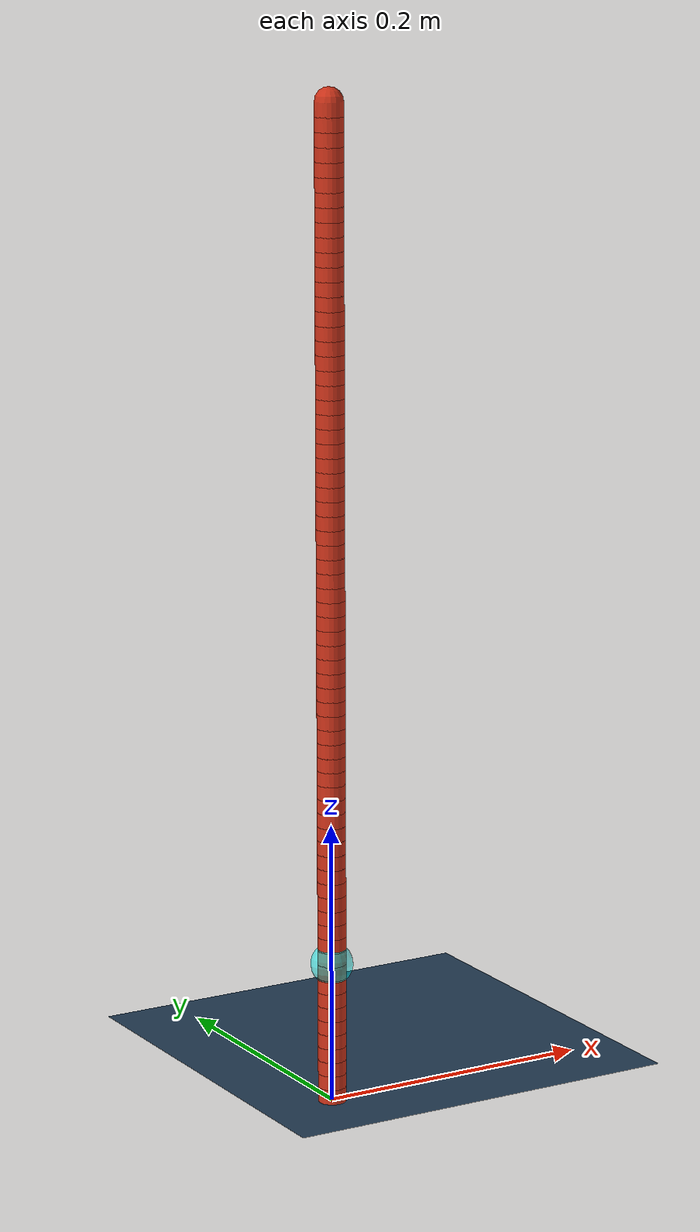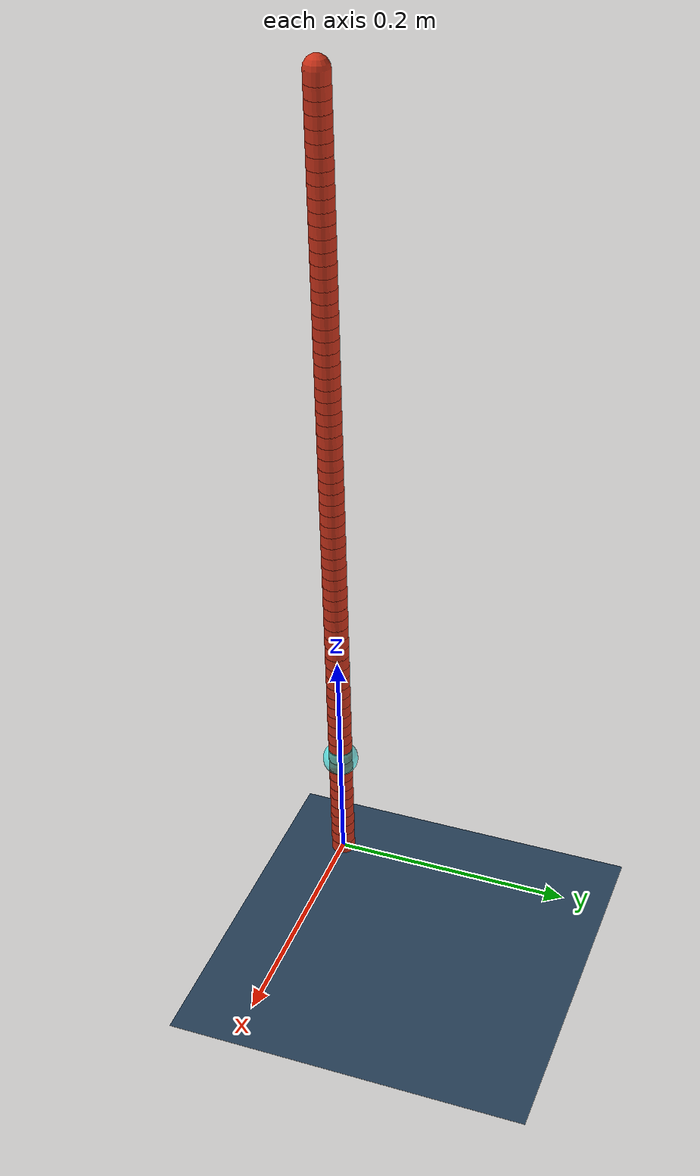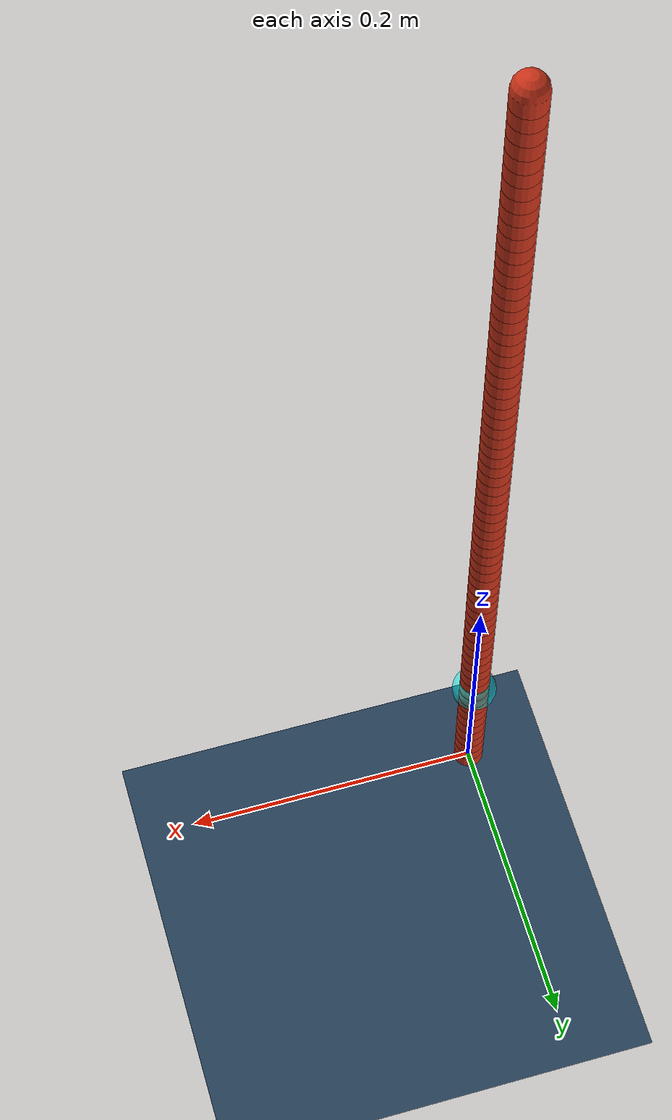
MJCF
<mujoco model="RopeNoComposite">
  <size nconmax="2000" njmax="20000" nstack="500000"/>

  <visual>
    <headlight diffuse="0.6 0.6 0.6" ambient="0.1 0.1 0.1" specular="0 0 0"/>
    <rgba haze="0.15 0.25 0.35 1"/>
    <global azimuth="120" elevation="-20"/>
  </visual>

  <asset>
    <texture type="skybox" builtin="gradient" rgb1="0.3 0.5 0.7" rgb2="0 0 0" width="512" height="3072"/>
    <texture type="2d" name="groundplane" builtin="checker" mark="edge" rgb1="0.2 0.3 0.4" rgb2="0.1 0.2 0.3" markrgb="0.8 0.8 0.8" width="300" height="300"/>
    <material name="groundplane" texture="groundplane" texuniform="true" texrepeat="5 5" reflectance="0.2"/>
  </asset>

  <worldbody>
    <light pos="0 0 1.5" dir="0 0 -1" directional="true"/>

    <geom name="ground" type="plane" size="0 0 1" material="groundplane"/>

    <body name="mocap_hand" mocap="true" pos="0 0 0.1">
        <geom type="sphere" size="0.015" rgba="0 1 1 0.5" group="1" contype="0" conaffinity="0"/>
        <site name="hand_site" pos="0 0 0" size="0.005" rgba="1 0 0 0" />
    </body>

    <body name="link_0" pos="0 0 0">
        <freejoint/>
        <site name="site_link_0" pos="0 0 0" size="0.005" rgba="0 0 1 0"/>
        <geom type="capsule" fromto="0 0 0  0 0 0.01" size="0.01" friction="2.0 0.1 0.01" rgba="0.8 0.2 0.1 1"/>
        <body name="link_1" pos="0 0 0.01">
          <joint name="j_1" type="ball" damping="0.005"/>
          <site name="site_link_1" pos="0 0 0" size="0.005" rgba="0 0 1 0"/>
          <geom type="capsule" fromto="0 0 0  0 0 0.01" size="0.01" friction="2.0 0.1 0.01" rgba="0.8 0.2 0.1 1"/>
          <body name="link_2" pos="0 0 0.01">
            <joint name="j_2" type="ball" damping="0.005"/>
            <site name="site_link_2" pos="0 0 0" size="0.005" rgba="0 0 1 0"/>
            <geom type="capsule" fromto="0 0 0  0 0 0.01" size="0.01" friction="2.0 0.1 0.01" rgba="0.8 0.2 0.1 1"/>
            <body name="link_3" pos="0 0 0.01">
              <joint name="j_3" type="ball" damping="0.005"/>
              <site name="site_link_3" pos="0 0 0" size="0.005" rgba="0 0 1 0"/>
              <geom type="capsule" fromto="0 0 0  0 0 0.01" size="0.01" friction="2.0 0.1 0.01" rgba="0.8 0.2 0.1 1"/>
              <body name="link_4" pos="0 0 0.01">
                <joint name="j_4" type="ball" damping="0.005"/>
                <site name="site_link_4" pos="0 0 0" size="0.005" rgba="0 0 1 0"/>
                <geom type="capsule" fromto="0 0 0  0 0 0.01" size="0.01" friction="2.0 0.1 0.01" rgba="0.8 0.2 0.1 1"/>
                <body name="link_5" pos="0 0 0.01">
                  <joint name="j_5" type="ball" damping="0.005"/>
                  <site name="site_link_5" pos="0 0 0" size="0.005" rgba="0 0 1 0"/>
                  <geom type="capsule" fromto="0 0 0  0 0 0.01" size="0.01" friction="2.0 0.1 0.01" rgba="0.8 0.2 0.1 1"/>
                  <body name="link_6" pos="0 0 0.01">
                    <joint name="j_6" type="ball" damping="0.005"/>
                    <site name="site_link_6" pos="0 0 0" size="0.005" rgba="0 0 1 0"/>
                    <geom type="capsule" fromto="0 0 0  0 0 0.01" size="0.01" friction="2.0 0.1 0.01" rgba="0.8 0.2 0.1 1"/>
                    <body name="link_7" pos="0 0 0.01">
                      <joint name="j_7" type="ball" damping="0.005"/>
                      <site name="site_link_7" pos="0 0 0" size="0.005" rgba="0 0 1 0"/>
                      <geom type="capsule" fromto="0 0 0  0 0 0.01" size="0.01" friction="2.0 0.1 0.01" rgba="0.8 0.2 0.1 1"/>
                      <body name="link_8" pos="0 0 0.01">
                        <joint name="j_8" type="ball" damping="0.005"/>
                        <site name="site_link_8" pos="0 0 0" size="0.005" rgba="0 0 1 0"/>
                        <geom type="capsule" fromto="0 0 0  0 0 0.01" size="0.01" friction="2.0 0.1 0.01" rgba="0.8 0.2 0.1 1"/>
                        <body name="link_9" pos="0 0 0.01">
                          <joint name="j_9" type="ball" damping="0.005"/>
                          <site name="site_link_9" pos="0 0 0" size="0.005" rgba="0 0 1 0"/>
                          <geom type="capsule" fromto="0 0 0  0 0 0.01" size="0.01" friction="2.0 0.1 0.01" rgba="0.8 0.2 0.1 1"/>
                          <body name="link_10" pos="0 0 0.01">
                            <joint name="j_10" type="ball" damping="0.005"/>
                            <site name="site_link_10" pos="0 0 0" size="0.005" rgba="0 0 1 0"/>
                            <geom type="capsule" fromto="0 0 0  0 0 0.01" size="0.01" friction="2.0 0.1 0.01" rgba="0.8 0.2 0.1 1"/>
                            <body name="link_11" pos="0 0 0.01">
                              <joint name="j_11" type="ball" damping="0.005"/>
                              <site name="site_link_11" pos="0 0 0" size="0.005" rgba="0 0 1 0"/>
                              <geom type="capsule" fromto="0 0 0  0 0 0.01" size="0.01" friction="2.0 0.1 0.01" rgba="0.8 0.2 0.1 1"/>
                              <body name="link_12" pos="0 0 0.01">
                                <joint name="j_12" type="ball" damping="0.005"/>
                                <site name="site_link_12" pos="0 0 0" size="0.005" rgba="0 0 1 0"/>
                                <geom type="capsule" fromto="0 0 0  0 0 0.01" size="0.01" friction="2.0 0.1 0.01" rgba="0.8 0.2 0.1 1"/>
                                <body name="link_13" pos="0 0 0.01">
                                  <joint name="j_13" type="ball" damping="0.005"/>
                                  <site name="site_link_13" pos="0 0 0" size="0.005" rgba="0 0 1 0"/>
                                  <geom type="capsule" fromto="0 0 0  0 0 0.01" size="0.01" friction="2.0 0.1 0.01" rgba="0.8 0.2 0.1 1"/>
                                  <body name="link_14" pos="0 0 0.01">
                                    <joint name="j_14" type="ball" damping="0.005"/>
                                    <site name="site_link_14" pos="0 0 0" size="0.005" rgba="0 0 1 0"/>
                                    <geom type="capsule" fromto="0 0 0  0 0 0.01" size="0.01" friction="2.0 0.1 0.01" rgba="0.8 0.2 0.1 1"/>
                                    <body name="link_15" pos="0 0 0.01">
                                      <joint name="j_15" type="ball" damping="0.005"/>
                                      <site name="site_link_15" pos="0 0 0" size="0.005" rgba="0 0 1 0"/>
                                      <geom type="capsule" fromto="0 0 0  0 0 0.01" size="0.01" friction="2.0 0.1 0.01" rgba="0.8 0.2 0.1 1"/>
                                      <body name="link_16" pos="0 0 0.01">
                                        <joint name="j_16" type="ball" damping="0.005"/>
                                        <site name="site_link_16" pos="0 0 0" size="0.005" rgba="0 0 1 0"/>
                                        <geom type="capsule" fromto="0 0 0  0 0 0.01" size="0.01" friction="2.0 0.1 0.01" rgba="0.8 0.2 0.1 1"/>
                                        <body name="link_17" pos="0 0 0.01">
                                          <joint name="j_17" type="ball" damping="0.005"/>
                                          <site name="site_link_17" pos="0 0 0" size="0.005" rgba="0 0 1 0"/>
                                          <geom type="capsule" fromto="0 0 0  0 0 0.01" size="0.01" friction="2.0 0.1 0.01" rgba="0.8 0.2 0.1 1"/>
                                          <body name="link_18" pos="0 0 0.01">
                                            <joint name="j_18" type="ball" damping="0.005"/>
                                            <site name="site_link_18" pos="0 0 0" size="0.005" rgba="0 0 1 0"/>
                                            <geom type="capsule" fromto="0 0 0  0 0 0.01" size="0.01" friction="2.0 0.1 0.01" rgba="0.8 0.2 0.1 1"/>
                                            <body name="link_19" pos="0 0 0.01">
                                              <joint name="j_19" type="ball" damping="0.005"/>
                                              <site name="site_link_19" pos="0 0 0" size="0.005" rgba="0 0 1 0"/>
                                              <geom type="capsule" fromto="0 0 0  0 0 0.01" size="0.01" friction="2.0 0.1 0.01" rgba="0.8 0.2 0.1 1"/>
                                              <body name="link_20" pos="0 0 0.01">
                                                <joint name="j_20" type="ball" damping="0.005"/>
                                                <site name="site_link_20" pos="0 0 0" size="0.005" rgba="0 0 1 0"/>
                                                <geom type="capsule" fromto="0 0 0  0 0 0.01" size="0.01" friction="2.0 0.1 0.01" rgba="0.8 0.2 0.1 1"/>
                                                <body name="link_21" pos="0 0 0.01">
                                                  <joint name="j_21" type="ball" damping="0.005"/>
                                                  <site name="site_link_21" pos="0 0 0" size="0.005" rgba="0 0 1 0"/>
                                                  <geom type="capsule" fromto="0 0 0  0 0 0.01" size="0.01" friction="2.0 0.1 0.01" rgba="0.8 0.2 0.1 1"/>
                                                  <body name="link_22" pos="0 0 0.01">
                                                    <joint name="j_22" type="ball" damping="0.005"/>
                                                    <site name="site_link_22" pos="0 0 0" size="0.005" rgba="0 0 1 0"/>
                                                    <geom type="capsule" fromto="0 0 0  0 0 0.01" size="0.01" friction="2.0 0.1 0.01" rgba="0.8 0.2 0.1 1"/>
                                                    <body name="link_23" pos="0 0 0.01">
                                                      <joint name="j_23" type="ball" damping="0.005"/>
                                                      <site name="site_link_23" pos="0 0 0" size="0.005" rgba="0 0 1 0"/>
                                                      <geom type="capsule" fromto="0 0 0  0 0 0.01" size="0.01" friction="2.0 0.1 0.01" rgba="0.8 0.2 0.1 1"/>
                                                      <body name="link_24" pos="0 0 0.01">
                                                        <joint name="j_24" type="ball" damping="0.005"/>
                                                        <site name="site_link_24" pos="0 0 0" size="0.005" rgba="0 0 1 0"/>
                                                        <geom type="capsule" fromto="0 0 0  0 0 0.01" size="0.01" friction="2.0 0.1 0.01" rgba="0.8 0.2 0.1 1"/>
                                                        <body name="link_25" pos="0 0 0.01">
                                                          <joint name="j_25" type="ball" damping="0.005"/>
                                                          <site name="site_link_25" pos="0 0 0" size="0.005" rgba="0 0 1 0"/>
                                                          <geom type="capsule" fromto="0 0 0  0 0 0.01" size="0.01" friction="2.0 0.1 0.01" rgba="0.8 0.2 0.1 1"/>
                                                          <body name="link_26" pos="0 0 0.01">
                                                            <joint name="j_26" type="ball" damping="0.005"/>
                                                            <site name="site_link_26" pos="0 0 0" size="0.005" rgba="0 0 1 0"/>
                                                            <geom type="capsule" fromto="0 0 0  0 0 0.01" size="0.01" friction="2.0 0.1 0.01" rgba="0.8 0.2 0.1 1"/>
                                                            <body name="link_27" pos="0 0 0.01">
                                                              <joint name="j_27" type="ball" damping="0.005"/>
                                                              <site name="site_link_27" pos="0 0 0" size="0.005" rgba="0 0 1 0"/>
                                                              <geom type="capsule" fromto="0 0 0  0 0 0.01" size="0.01" friction="2.0 0.1 0.01" rgba="0.8 0.2 0.1 1"/>
                                                              <body name="link_28" pos="0 0 0.01">
                                                                <joint name="j_28" type="ball" damping="0.005"/>
                                                                <site name="site_link_28" pos="0 0 0" size="0.005" rgba="0 0 1 0"/>
                                                                <geom type="capsule" fromto="0 0 0  0 0 0.01" size="0.01" friction="2.0 0.1 0.01" rgba="0.8 0.2 0.1 1"/>
                                                                <body name="link_29" pos="0 0 0.01">
                                                                  <joint name="j_29" type="ball" damping="0.005"/>
                                                                  <site name="site_link_29" pos="0 0 0" size="0.005" rgba="0 0 1 0"/>
                                                                  <geom type="capsule" fromto="0 0 0  0 0 0.01" size="0.01" friction="2.0 0.1 0.01" rgba="0.8 0.2 0.1 1"/>
                                                                  <body name="link_30" pos="0 0 0.01">
                                                                    <joint name="j_30" type="ball" damping="0.005"/>
                                                                    <site name="site_link_30" pos="0 0 0" size="0.005" rgba="0 0 1 0"/>
                                                                    <geom type="capsule" fromto="0 0 0  0 0 0.01" size="0.01" friction="2.0 0.1 0.01" rgba="0.8 0.2 0.1 1"/>
                                                                    <body name="link_31" pos="0 0 0.01">
                                                                      <joint name="j_31" type="ball" damping="0.005"/>
                                                                      <site name="site_link_31" pos="0 0 0" size="0.005" rgba="0 0 1 0"/>
                                                                      <geom type="capsule" fromto="0 0 0  0 0 0.01" size="0.01" friction="2.0 0.1 0.01" rgba="0.8 0.2 0.1 1"/>
                                                                      <body name="link_32" pos="0 0 0.01">
                                                                        <joint name="j_32" type="ball" damping="0.005"/>
                                                                        <site name="site_link_32" pos="0 0 0" size="0.005" rgba="0 0 1 0"/>
                                                                        <geom type="capsule" fromto="0 0 0  0 0 0.01" size="0.01" friction="2.0 0.1 0.01" rgba="0.8 0.2 0.1 1"/>
                                                                        <body name="link_33" pos="0 0 0.01">
                                                                          <joint name="j_33" type="ball" damping="0.005"/>
                                                                          <site name="site_link_33" pos="0 0 0" size="0.005" rgba="0 0 1 0"/>
                                                                          <geom type="capsule" fromto="0 0 0  0 0 0.01" size="0.01" friction="2.0 0.1 0.01" rgba="0.8 0.2 0.1 1"/>
                                                                          <body name="link_34" pos="0 0 0.01">
                                                                            <joint name="j_34" type="ball" damping="0.005"/>
                                                                            <site name="site_link_34" pos="0 0 0" size="0.005" rgba="0 0 1 0"/>
                                                                            <geom type="capsule" fromto="0 0 0  0 0 0.01" size="0.01" friction="2.0 0.1 0.01" rgba="0.8 0.2 0.1 1"/>
                                                                            <body name="link_35" pos="0 0 0.01">
                                                                              <joint name="j_35" type="ball" damping="0.005"/>
                                                                              <site name="site_link_35" pos="0 0 0" size="0.005" rgba="0 0 1 0"/>
                                                                              <geom type="capsule" fromto="0 0 0  0 0 0.01" size="0.01" friction="2.0 0.1 0.01" rgba="0.8 0.2 0.1 1"/>
                                                                              <body name="link_36" pos="0 0 0.01">
                                                                                <joint name="j_36" type="ball" damping="0.005"/>
                                                                                <site name="site_link_36" pos="0 0 0" size="0.005" rgba="0 0 1 0"/>
                                                                                <geom type="capsule" fromto="0 0 0  0 0 0.01" size="0.01" friction="2.0 0.1 0.01" rgba="0.8 0.2 0.1 1"/>
                                                                                <body name="link_37" pos="0 0 0.01">
                                                                                  <joint name="j_37" type="ball" damping="0.005"/>
                                                                                  <site name="site_link_37" pos="0 0 0" size="0.005" rgba="0 0 1 0"/>
                                                                                  <geom type="capsule" fromto="0 0 0  0 0 0.01" size="0.01" friction="2.0 0.1 0.01" rgba="0.8 0.2 0.1 1"/>
                                                                                  <body name="link_38" pos="0 0 0.01">
                                                                                    <joint name="j_38" type="ball" damping="0.005"/>
                                                                                    <site name="site_link_38" pos="0 0 0" size="0.005" rgba="0 0 1 0"/>
                                                                                    <geom type="capsule" fromto="0 0 0  0 0 0.01" size="0.01" friction="2.0 0.1 0.01" rgba="0.8 0.2 0.1 1"/>
                                                                                    <body name="link_39" pos="0 0 0.01">
                                                                                      <joint name="j_39" type="ball" damping="0.005"/>
                                                                                      <site name="site_link_39" pos="0 0 0" size="0.005" rgba="0 0 1 0"/>
                                                                                      <geom type="capsule" fromto="0 0 0  0 0 0.01" size="0.01" friction="2.0 0.1 0.01" rgba="0.8 0.2 0.1 1"/>
                                                                                      <body name="link_40" pos="0 0 0.01">
                                                                                        <joint name="j_40" type="ball" damping="0.005"/>
                                                                                        <site name="site_link_40" pos="0 0 0" size="0.005" rgba="0 0 1 0"/>
                                                                                        <geom type="capsule" fromto="0 0 0  0 0 0.01" size="0.01" friction="2.0 0.1 0.01" rgba="0.8 0.2 0.1 1"/>
                                                                                        <body name="link_41" pos="0 0 0.01">
                                                                                          <joint name="j_41" type="ball" damping="0.005"/>
                                                                                          <site name="site_link_41" pos="0 0 0" size="0.005" rgba="0 0 1 0"/>
                                                                                          <geom type="capsule" fromto="0 0 0  0 0 0.01" size="0.01" friction="2.0 0.1 0.01" rgba="0.8 0.2 0.1 1"/>
                                                                                          <body name="link_42" pos="0 0 0.01">
                                                                                            <joint name="j_42" type="ball" damping="0.005"/>
                                                                                            <site name="site_link_42" pos="0 0 0" size="0.005" rgba="0 0 1 0"/>
                                                                                            <geom type="capsule" fromto="0 0 0  0 0 0.01" size="0.01" friction="2.0 0.1 0.01" rgba="0.8 0.2 0.1 1"/>
                                                                                            <body name="link_43" pos="0 0 0.01">
                                                                                              <joint name="j_43" type="ball" damping="0.005"/>
                                                                                              <site name="site_link_43" pos="0 0 0" size="0.005" rgba="0 0 1 0"/>
                                                                                              <geom type="capsule" fromto="0 0 0  0 0 0.01" size="0.01" friction="2.0 0.1 0.01" rgba="0.8 0.2 0.1 1"/>
                                                                                              <body name="link_44" pos="0 0 0.01">
                                                                                                <joint name="j_44" type="ball" damping="0.005"/>
                                                                                                <site name="site_link_44" pos="0 0 0" size="0.005" rgba="0 0 1 0"/>
                                                                                                <geom type="capsule" fromto="0 0 0  0 0 0.01" size="0.01" friction="2.0 0.1 0.01" rgba="0.8 0.2 0.1 1"/>
                                                                                                <body name="link_45" pos="0 0 0.01">
                                                                                                  <joint name="j_45" type="ball" damping="0.005"/>
                                                                                                  <site name="site_link_45" pos="0 0 0" size="0.005" rgba="0 0 1 0"/>
                                                                                                  <geom type="capsule" fromto="0 0 0  0 0 0.01" size="0.01" friction="2.0 0.1 0.01" rgba="0.8 0.2 0.1 1"/>
                                                                                                  <body name="link_46" pos="0 0 0.01">
                                                                                                    <joint name="j_46" type="ball" damping="0.005"/>
                                                                                                    <site name="site_link_46" pos="0 0 0" size="0.005" rgba="0 0 1 0"/>
                                                                                                    <geom type="capsule" fromto="0 0 0  0 0 0.01" size="0.01" friction="2.0 0.1 0.01" rgba="0.8 0.2 0.1 1"/>
                                                                                                    <body name="link_47" pos="0 0 0.01">
                                                                                                      <joint name="j_47" type="ball" damping="0.005"/>
                                                                                                      <site name="site_link_47" pos="0 0 0" size="0.005" rgba="0 0 1 0"/>
                                                                                                      <geom type="capsule" fromto="0 0 0  0 0 0.01" size="0.01" friction="2.0 0.1 0.01" rgba="0.8 0.2 0.1 1"/>
                                                                                                      <body name="link_48" pos="0 0 0.01">
                                                                                                        <joint name="j_48" type="ball" damping="0.005"/>
                                                                                                        <site name="site_link_48" pos="0 0 0" size="0.005" rgba="0 0 1 0"/>
                                                                                                        <geom type="capsule" fromto="0 0 0  0 0 0.01" size="0.01" friction="2.0 0.1 0.01" rgba="0.8 0.2 0.1 1"/>
                                                                                                        <body name="link_49" pos="0 0 0.01">
                                                                                                          <joint name="j_49" type="ball" damping="0.005"/>
                                                                                                          <site name="site_link_49" pos="0 0 0" size="0.005" rgba="0 0 1 0"/>
                                                                                                          <geom type="capsule" fromto="0 0 0  0 0 0.01" size="0.01" friction="2.0 0.1 0.01" rgba="0.8 0.2 0.1 1"/>
                                                                                                          <body name="link_50" pos="0 0 0.01">
                                                                                                            <joint name="j_50" type="ball" damping="0.005"/>
                                                                                                            <site name="site_link_50" pos="0 0 0" size="0.005" rgba="0 0 1 0"/>
                                                                                                            <geom type="capsule" fromto="0 0 0  0 0 0.01" size="0.01" friction="2.0 0.1 0.01" rgba="0.8 0.2 0.1 1"/>
                                                                                                            <body name="link_51" pos="0 0 0.01">
                                                                                                              <joint name="j_51" type="ball" damping="0.005"/>
                                                                                                              <site name="site_link_51" pos="0 0 0" size="0.005" rgba="0 0 1 0"/>
                                                                                                              <geom type="capsule" fromto="0 0 0  0 0 0.01" size="0.01" friction="2.0 0.1 0.01" rgba="0.8 0.2 0.1 1"/>
                                                                                                              <body name="link_52" pos="0 0 0.01">
                                                                                                                <joint name="j_52" type="ball" damping="0.005"/>
                                                                                                                <site name="site_link_52" pos="0 0 0" size="0.005" rgba="0 0 1 0"/>
                                                                                                                <geom type="capsule" fromto="0 0 0  0 0 0.01" size="0.01" friction="2.0 0.1 0.01" rgba="0.8 0.2 0.1 1"/>
                                                                                                                <body name="link_53" pos="0 0 0.01">
                                                                                                                  <joint name="j_53" type="ball" damping="0.005"/>
                                                                                                                  <site name="site_link_53" pos="0 0 0" size="0.005" rgba="0 0 1 0"/>
                                                                                                                  <geom type="capsule" fromto="0 0 0  0 0 0.01" size="0.01" friction="2.0 0.1 0.01" rgba="0.8 0.2 0.1 1"/>
                                                                                                                  <body name="link_54" pos="0 0 0.01">
                                                                                                                    <joint name="j_54" type="ball" damping="0.005"/>
                                                                                                                    <site name="site_link_54" pos="0 0 0" size="0.005" rgba="0 0 1 0"/>
                                                                                                                    <geom type="capsule" fromto="0 0 0  0 0 0.01" size="0.01" friction="2.0 0.1 0.01" rgba="0.8 0.2 0.1 1"/>
                                                                                                                    <body name="link_55" pos="0 0 0.01">
                                                                                                                      <joint name="j_55" type="ball" damping="0.005"/>
                                                                                                                      <site name="site_link_55" pos="0 0 0" size="0.005" rgba="0 0 1 0"/>
                                                                                                                      <geom type="capsule" fromto="0 0 0  0 0 0.01" size="0.01" friction="2.0 0.1 0.01" rgba="0.8 0.2 0.1 1"/>
                                                                                                                      <body name="link_56" pos="0 0 0.01">
                                                                                                                        <joint name="j_56" type="ball" damping="0.005"/>
                                                                                                                        <site name="site_link_56" pos="0 0 0" size="0.005" rgba="0 0 1 0"/>
                                                                                                                        <geom type="capsule" fromto="0 0 0  0 0 0.01" size="0.01" friction="2.0 0.1 0.01" rgba="0.8 0.2 0.1 1"/>
                                                                                                                        <body name="link_57" pos="0 0 0.01">
                                                                                                                          <joint name="j_57" type="ball" damping="0.005"/>
                                                                                                                          <site name="site_link_57" pos="0 0 0" size="0.005" rgba="0 0 1 0"/>
                                                                                                                          <geom type="capsule" fromto="0 0 0  0 0 0.01" size="0.01" friction="2.0 0.1 0.01" rgba="0.8 0.2 0.1 1"/>
                                                                                                                          <body name="link_58" pos="0 0 0.01">
                                                                                                                            <joint name="j_58" type="ball" damping="0.005"/>
                                                                                                                            <site name="site_link_58" pos="0 0 0" size="0.005" rgba="0 0 1 0"/>
                                                                                                                            <geom type="capsule" fromto="0 0 0  0 0 0.01" size="0.01" friction="2.0 0.1 0.01" rgba="0.8 0.2 0.1 1"/>
                                                                                                                            <body name="link_59" pos="0 0 0.01">
                                                                                                                              <joint name="j_59" type="ball" damping="0.005"/>
                                                                                                                              <site name="site_link_59" pos="0 0 0" size="0.005" rgba="0 0 1 0"/>
                                                                                                                              <geom type="capsule" fromto="0 0 0  0 0 0.01" size="0.01" friction="2.0 0.1 0.01" rgba="0.8 0.2 0.1 1"/>
                                                                                                                              <body name="link_60" pos="0 0 0.01">
                                                                                                                                <joint name="j_60" type="ball" damping="0.005"/>
                                                                                                                                <site name="site_link_60" pos="0 0 0" size="0.005" rgba="0 0 1 0"/>
                                                                                                                                <geom type="capsule" fromto="0 0 0  0 0 0.01" size="0.01" friction="2.0 0.1 0.01" rgba="0.8 0.2 0.1 1"/>
                                                                                                                                <body name="link_61" pos="0 0 0.01">
                                                                                                                                  <joint name="j_61" type="ball" damping="0.005"/>
                                                                                                                                  <site name="site_link_61" pos="0 0 0" size="0.005" rgba="0 0 1 0"/>
                                                                                                                                  <geom type="capsule" fromto="0 0 0  0 0 0.01" size="0.01" friction="2.0 0.1 0.01" rgba="0.8 0.2 0.1 1"/>
                                                                                                                                  <body name="link_62" pos="0 0 0.01">
                                                                                                                                    <joint name="j_62" type="ball" damping="0.005"/>
                                                                                                                                    <site name="site_link_62" pos="0 0 0" size="0.005" rgba="0 0 1 0"/>
                                                                                                                                    <geom type="capsule" fromto="0 0 0  0 0 0.01" size="0.01" friction="2.0 0.1 0.01" rgba="0.8 0.2 0.1 1"/>
                                                                                                                                    <body name="link_63" pos="0 0 0.01">
                                                                                                                                      <joint name="j_63" type="ball" damping="0.005"/>
                                                                                                                                      <site name="site_link_63" pos="0 0 0" size="0.005" rgba="0 0 1 0"/>
                                                                                                                                      <geom type="capsule" fromto="0 0 0  0 0 0.01" size="0.01" friction="2.0 0.1 0.01" rgba="0.8 0.2 0.1 1"/>
                                                                                                                                      <body name="link_64" pos="0 0 0.01">
                                                                                                                                        <joint name="j_64" type="ball" damping="0.005"/>
                                                                                                                                        <site name="site_link_64" pos="0 0 0" size="0.005" rgba="0 0 1 0"/>
                                                                                                                                        <geom type="capsule" fromto="0 0 0  0 0 0.01" size="0.01" friction="2.0 0.1 0.01" rgba="0.8 0.2 0.1 1"/>
                                                                                                                                        <body name="link_65" pos="0 0 0.01">
                                                                                                                                          <joint name="j_65" type="ball" damping="0.005"/>
                                                                                                                                          <site name="site_link_65" pos="0 0 0" size="0.005" rgba="0 0 1 0"/>
                                                                                                                                          <geom type="capsule" fromto="0 0 0  0 0 0.01" size="0.01" friction="2.0 0.1 0.01" rgba="0.8 0.2 0.1 1"/>
                                                                                                                                          <body name="link_66" pos="0 0 0.01">
                                                                                                                                            <joint name="j_66" type="ball" damping="0.005"/>
                                                                                                                                            <site name="site_link_66" pos="0 0 0" size="0.005" rgba="0 0 1 0"/>
                                                                                                                                            <geom type="capsule" fromto="0 0 0  0 0 0.01" size="0.01" friction="2.0 0.1 0.01" rgba="0.8 0.2 0.1 1"/>
                                                                                                                                            <body name="link_67" pos="0 0 0.01">
                                                                                                                                              <joint name="j_67" type="ball" damping="0.005"/>
                                                                                                                                              <site name="site_link_67" pos="0 0 0" size="0.005" rgba="0 0 1 0"/>
                                                                                                                                              <geom type="capsule" fromto="0 0 0  0 0 0.01" size="0.01" friction="2.0 0.1 0.01" rgba="0.8 0.2 0.1 1"/>
                                                                                                                                              <body name="link_68" pos="0 0 0.01">
                                                                                                                                                <joint name="j_68" type="ball" damping="0.005"/>
                                                                                                                                                <site name="site_link_68" pos="0 0 0" size="0.005" rgba="0 0 1 0"/>
                                                                                                                                                <geom type="capsule" fromto="0 0 0  0 0 0.01" size="0.01" friction="2.0 0.1 0.01" rgba="0.8 0.2 0.1 1"/>
                                                                                                                                                <body name="link_69" pos="0 0 0.01">
                                                                                                                                                  <joint name="j_69" type="ball" damping="0.005"/>
                                                                                                                                                  <site name="site_link_69" pos="0 0 0" size="0.005" rgba="0 0 1 0"/>
                                                                                                                                                  <geom type="capsule" fromto="0 0 0  0 0 0.01" size="0.01" friction="2.0 0.1 0.01" rgba="0.8 0.2 0.1 1"/>
                                                                                                                                                </body>
                                                                                                                                              </body>
                                                                                                                                            </body>
                                                                                                                                          </body>
                                                                                                                                        </body>
                                                                                                                                      </body>
                                                                                                                                    </body>
                                                                                                                                  </body>
                                                                                                                                </body>
                                                                                                                              </body>
                                                                                                                            </body>
                                                                                                                          </body>
                                                                                                                        </body>
                                                                                                                      </body>
                                                                                                                    </body>
                                                                                                                  </body>
                                                                                                                </body>
                                                                                                              </body>
                                                                                                            </body>
                                                                                                          </body>
                                                                                                        </body>
                                                                                                      </body>
                                                                                                    </body>
                                                                                                  </body>
                                                                                                </body>
                                                                                              </body>
                                                                                            </body>
                                                                                          </body>
                                                                                        </body>
                                                                                      </body>
                                                                                    </body>
                                                                                  </body>
                                                                                </body>
                                                                              </body>
                                                                            </body>
                                                                          </body>
                                                                        </body>
                                                                      </body>
                                                                    </body>
                                                                  </body>
                                                                </body>
                                                              </body>
                                                            </body>
                                                          </body>
                                                        </body>
                                                      </body>
                                                    </body>
                                                  </body>
                                                </body>
                                              </body>
                                            </body>
                                          </body>
                                        </body>
                                      </body>
                                    </body>
                                  </body>
                                </body>
                              </body>
                            </body>
                          </body>
                        </body>
                      </body>
                    </body>
                  </body>
                </body>
              </body>
            </body>
          </body>
        </body>
      </body>
  </worldbody>

  <equality>
    <weld name="weld_0" site1="hand_site" site2="site_link_0" active="false" solref="0.01 1"/>
    <weld name="weld_1" site1="hand_site" site2="site_link_1" active="false" solref="0.01 1"/>
    <weld name="weld_2" site1="hand_site" site2="site_link_2" active="false" solref="0.01 1"/>
    <weld name="weld_3" site1="hand_site" site2="site_link_3" active="false" solref="0.01 1"/>
    <weld name="weld_4" site1="hand_site" site2="site_link_4" active="false" solref="0.01 1"/>
    <weld name="weld_5" site1="hand_site" site2="site_link_5" active="false" solref="0.01 1"/>
    <weld name="weld_6" site1="hand_site" site2="site_link_6" active="false" solref="0.01 1"/>
    <weld name="weld_7" site1="hand_site" site2="site_link_7" active="false" solref="0.01 1"/>
    <weld name="weld_8" site1="hand_site" site2="site_link_8" active="false" solref="0.01 1"/>
    <weld name="weld_9" site1="hand_site" site2="site_link_9" active="false" solref="0.01 1"/>
    <weld name="weld_10" site1="hand_site" site2="site_link_10" active="false" solref="0.01 1"/>
    <weld name="weld_11" site1="hand_site" site2="site_link_11" active="false" solref="0.01 1"/>
    <weld name="weld_12" site1="hand_site" site2="site_link_12" active="false" solref="0.01 1"/>
    <weld name="weld_13" site1="hand_site" site2="site_link_13" active="false" solref="0.01 1"/>
    <weld name="weld_14" site1="hand_site" site2="site_link_14" active="false" solref="0.01 1"/>
    <weld name="weld_15" site1="hand_site" site2="site_link_15" active="false" solref="0.01 1"/>
    <weld name="weld_16" site1="hand_site" site2="site_link_16" active="false" solref="0.01 1"/>
    <weld name="weld_17" site1="hand_site" site2="site_link_17" active="false" solref="0.01 1"/>
    <weld name="weld_18" site1="hand_site" site2="site_link_18" active="false" solref="0.01 1"/>
    <weld name="weld_19" site1="hand_site" site2="site_link_19" active="false" solref="0.01 1"/>
    <weld name="weld_20" site1="hand_site" site2="site_link_20" active="false" solref="0.01 1"/>
    <weld name="weld_21" site1="hand_site" site2="site_link_21" active="false" solref="0.01 1"/>
    <weld name="weld_22" site1="hand_site" site2="site_link_22" active="false" solref="0.01 1"/>
    <weld name="weld_23" site1="hand_site" site2="site_link_23" active="false" solref="0.01 1"/>
    <weld name="weld_24" site1="hand_site" site2="site_link_24" active="false" solref="0.01 1"/>
    <weld name="weld_25" site1="hand_site" site2="site_link_25" active="false" solref="0.01 1"/>
    <weld name="weld_26" site1="hand_site" site2="site_link_26" active="false" solref="0.01 1"/>
    <weld name="weld_27" site1="hand_site" site2="site_link_27" active="false" solref="0.01 1"/>
    <weld name="weld_28" site1="hand_site" site2="site_link_28" active="false" solref="0.01 1"/>
    <weld name="weld_29" site1="hand_site" site2="site_link_29" active="false" solref="0.01 1"/>
    <weld name="weld_30" site1="hand_site" site2="site_link_30" active="false" solref="0.01 1"/>
    <weld name="weld_31" site1="hand_site" site2="site_link_31" active="false" solref="0.01 1"/>
    <weld name="weld_32" site1="hand_site" site2="site_link_32" active="false" solref="0.01 1"/>
    <weld name="weld_33" site1="hand_site" site2="site_link_33" active="false" solref="0.01 1"/>
    <weld name="weld_34" site1="hand_site" site2="site_link_34" active="false" solref="0.01 1"/>
    <weld name="weld_35" site1="hand_site" site2="site_link_35" active="false" solref="0.01 1"/>
    <weld name="weld_36" site1="hand_site" site2="site_link_36" active="false" solref="0.01 1"/>
    <weld name="weld_37" site1="hand_site" site2="site_link_37" active="false" solref="0.01 1"/>
    <weld name="weld_38" site1="hand_site" site2="site_link_38" active="false" solref="0.01 1"/>
    <weld name="weld_39" site1="hand_site" site2="site_link_39" active="false" solref="0.01 1"/>
    <weld name="weld_40" site1="hand_site" site2="site_link_40" active="false" solref="0.01 1"/>
    <weld name="weld_41" site1="hand_site" site2="site_link_41" active="false" solref="0.01 1"/>
    <weld name="weld_42" site1="hand_site" site2="site_link_42" active="false" solref="0.01 1"/>
    <weld name="weld_43" site1="hand_site" site2="site_link_43" active="false" solref="0.01 1"/>
    <weld name="weld_44" site1="hand_site" site2="site_link_44" active="false" solref="0.01 1"/>
    <weld name="weld_45" site1="hand_site" site2="site_link_45" active="false" solref="0.01 1"/>
    <weld name="weld_46" site1="hand_site" site2="site_link_46" active="false" solref="0.01 1"/>
    <weld name="weld_47" site1="hand_site" site2="site_link_47" active="false" solref="0.01 1"/>
    <weld name="weld_48" site1="hand_site" site2="site_link_48" active="false" solref="0.01 1"/>
    <weld name="weld_49" site1="hand_site" site2="site_link_49" active="false" solref="0.01 1"/>
    <weld name="weld_50" site1="hand_site" site2="site_link_50" active="false" solref="0.01 1"/>
    <weld name="weld_51" site1="hand_site" site2="site_link_51" active="false" solref="0.01 1"/>
    <weld name="weld_52" site1="hand_site" site2="site_link_52" active="false" solref="0.01 1"/>
    <weld name="weld_53" site1="hand_site" site2="site_link_53" active="false" solref="0.01 1"/>
    <weld name="weld_54" site1="hand_site" site2="site_link_54" active="false" solref="0.01 1"/>
    <weld name="weld_55" site1="hand_site" site2="site_link_55" active="false" solref="0.01 1"/>
    <weld name="weld_56" site1="hand_site" site2="site_link_56" active="false" solref="0.01 1"/>
    <weld name="weld_57" site1="hand_site" site2="site_link_57" active="false" solref="0.01 1"/>
    <weld name="weld_58" site1="hand_site" site2="site_link_58" active="false" solref="0.01 1"/>
    <weld name="weld_59" site1="hand_site" site2="site_link_59" active="false" solref="0.01 1"/>
    <weld name="weld_60" site1="hand_site" site2="site_link_60" active="false" solref="0.01 1"/>
    <weld name="weld_61" site1="hand_site" site2="site_link_61" active="false" solref="0.01 1"/>
    <weld name="weld_62" site1="hand_site" site2="site_link_62" active="false" solref="0.01 1"/>
    <weld name="weld_63" site1="hand_site" site2="site_link_63" active="false" solref="0.01 1"/>
    <weld name="weld_64" site1="hand_site" site2="site_link_64" active="false" solref="0.01 1"/>
    <weld name="weld_65" site1="hand_site" site2="site_link_65" active="false" solref="0.01 1"/>
    <weld name="weld_66" site1="hand_site" site2="site_link_66" active="false" solref="0.01 1"/>
    <weld name="weld_67" site1="hand_site" site2="site_link_67" active="false" solref="0.01 1"/>
    <weld name="weld_68" site1="hand_site" site2="site_link_68" active="false" solref="0.01 1"/>
    <weld name="weld_69" site1="hand_site" site2="site_link_69" active="false" solref="0.01 1"/>
  </equality>
</mujoco>
